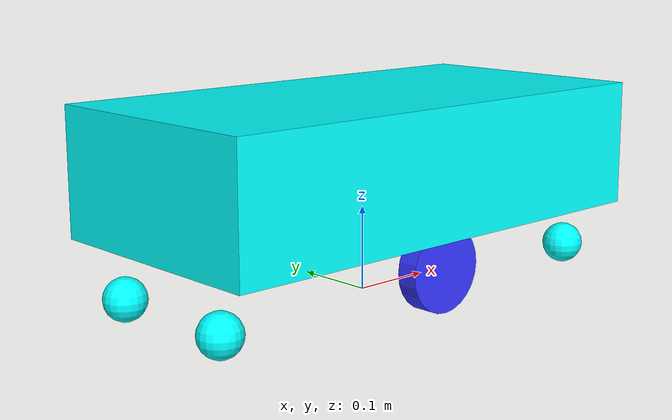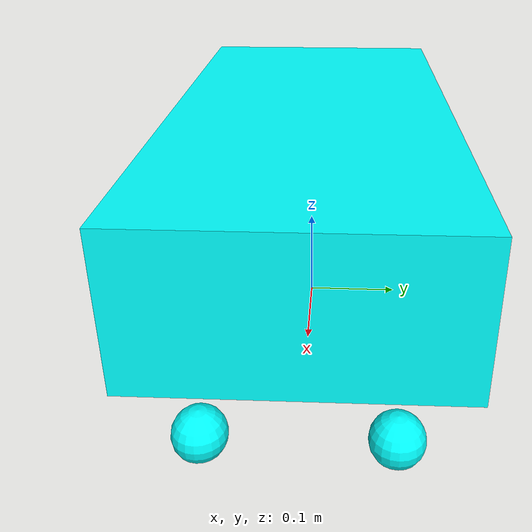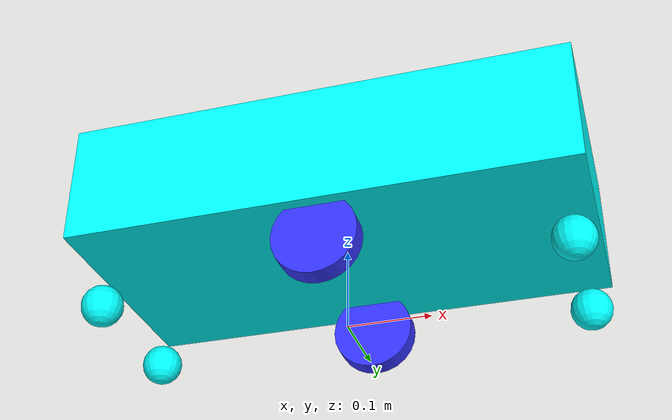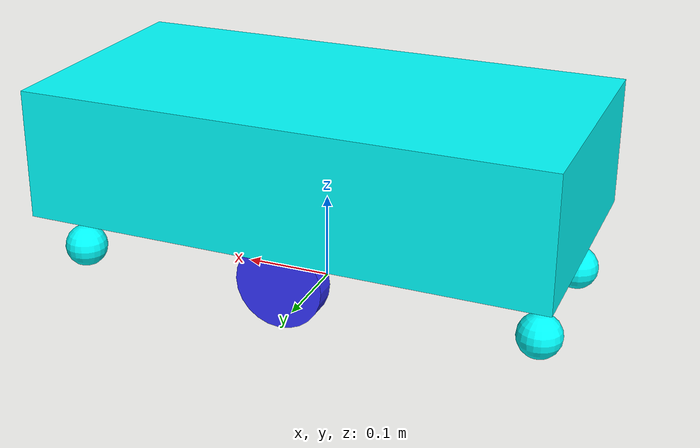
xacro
<?xml version="1.0"?>
<robot xmlns:xacro="http://www.ros.org/wiki/xacro" >

    <xacro:include filename="inertial_macros.xacro"/>

    <xacro:property name="chassis_length" value="0.60"/>
    <xacro:property name="chassis_width" value="0.30"/>
    <xacro:property name="chassis_height" value="0.15"/>
    <xacro:property name="base_width" value="0.22"/>
    <xacro:property name="chassis_zoff" value="0.08"/>
    <xacro:property name="chassis_mass" value="1.0"/>

    <xacro:property name="wheel_radius" value="0.05"/>
    <xacro:property name="wheel_width" value="0.025"/>
    <xacro:property name="wheel_mass" value="0.05"/>

    <xacro:property name="caster_wheel_radius" value="0.025"/>
    <xacro:property name="caster_wheel_mass" value="0.01"/>
    <xacro:property name="caster_wheel_zoff" value="${caster_wheel_radius}"/>

    <material name="cyan"><color rgba="0 1.0 1.0 1.0"/></material>
    <material name="gray"><color rgba="0.5 0.5 0.5 1.0"/></material>
    <material name="white"><color rgba="1 1 1 1"/></material>
    <material name="orange"><color rgba="1 0.3 0.1 1"/></material>
    <material name="blue"><color rgba="0.2 0.2 1 1"/></material>
    <material name="black"><color rgba="0 0 0 1"/></material>
    <material name="red"><color rgba="1 0 0 1"/></material>

    <!-- BASE LINK -->

    <link name="base_link"></link>

    <!-- BASE_FOOTPRINT LINK -->

    <joint name="base_footprint_joint" type="fixed">
        <parent link="base_link"/>
        <child link="base_footprint"/>
        <origin xyz="0 0 0" rpy="0 0 0"/>
    </joint>

    <link name="base_footprint"></link>

    <!-- CHASSIS LINK -->

    <joint name="chassis_joint" type="fixed">
        <parent link="base_link"/>
        <child link="chassis"/>
        <origin xyz="0 0 ${chassis_zoff}"/>
    </joint>

    <link name="chassis">
        <visual>
            <origin xyz="0 0 ${chassis_zoff}"/>
            <geometry>
                <box size="${chassis_length} ${chassis_width} ${chassis_height}"/>
            </geometry>
            <material name="cyan"/>
        </visual>
        <collision>
            <origin xyz="0 0 ${chassis_zoff}"/>
            <geometry>
                <box size="${chassis_length} ${chassis_width} ${chassis_height}"/>
            </geometry>
        </collision>
        <xacro:inertial_box mass="0.5" x="${chassis_length}" y="${chassis_width}" z="${chassis_height}">
            <origin xyz="0 0 ${chassis_zoff}" rpy="0 0 0"/>
        </xacro:inertial_box>
    </link>

    <gazebo reference="chassis">
        <material>Gazebo/Gray</material>
    </gazebo>

    <!-- LEFT WHEEL LINK -->

    <joint name="left_wheel_joint" type="continuous">
        <parent link="base_link"/>
        <child link="left_wheel"/>
        <origin xyz="0 ${(base_width + wheel_width)/2} ${wheel_radius}" rpy="-${pi/2} 0 0" />
        <axis xyz="0 0 1"/>
    </joint>

    <link name="left_wheel">
        <visual>
            <geometry>
                <cylinder radius="${wheel_radius}" length="${wheel_width}"/>
            </geometry>
            <material name="blue"/>
        </visual>
        <collision>
            <geometry>
                <sphere radius="${wheel_radius}"/>
            </geometry>
        </collision>
        <xacro:inertial_cylinder mass="${wheel_mass}" length="${wheel_width}" radius="${wheel_radius}">
            <origin xyz="0 0 0" rpy="0 0 0"/>
        </xacro:inertial_cylinder>
    </link>

    <gazebo reference="left_wheel">
        <material>Gazebo/Blue</material>
    </gazebo>

    <!-- RIGHT WHEEL LINK -->

    <joint name="right_wheel_joint" type="continuous">
        <parent link="base_link"/>
        <child link="right_wheel"/>
        <origin xyz="0 ${-(base_width + wheel_width)/2} ${wheel_radius}" rpy="${pi/2} 0 0" />
        <axis xyz="0 0 -1"/>
    </joint>

    <link name="right_wheel">
        <visual>
            <geometry>
                <cylinder radius="${wheel_radius}" length="${wheel_width}"/>
            </geometry>
            <material name="blue"/>
        </visual>
        <collision>
            <geometry>
                <sphere radius="${wheel_radius}"/>
            </geometry>
        </collision>
        <xacro:inertial_cylinder mass="${wheel_mass}" length="${wheel_width}" radius="${wheel_radius}">
            <origin xyz="0 0 0" rpy="0 0 0"/>
        </xacro:inertial_cylinder>
    </link>

    <gazebo reference="right_wheel">
        <material>Gazebo/Blue</material>
    </gazebo>

    <!-- CASTER WHEEL LINKS -->
    <xacro:macro name="caster_wheel" params="prefix x_reflect y_reflect">
        <link name="${prefix}_link">
            <visual>
                <geometry>
                    <sphere radius="${caster_wheel_radius}"/>
                </geometry>
                <material name="cyan"/>
            </visual>
            <collision>
                <origin xyz="0 0 0" rpy="0 0 0"/>
                <geometry>
                    <sphere radius="${caster_wheel_radius}"/>
                </geometry>
            </collision>
            <xacro:inertial_sphere mass="${caster_wheel_mass}" radius="${caster_wheel_radius}">
                <origin xyz="0 0 0" rpy="0 0 0"/>
            </xacro:inertial_sphere>
        </link>

        <joint name="${prefix}_joint" type="fixed">
            <parent link="base_link"/>
            <child link="${prefix}_link"/>
            <origin xyz="${x_reflect*(chassis_length/2-caster_wheel_radius)} ${y_reflect*(base_width/2-caster_wheel_radius)} ${caster_wheel_zoff}" rpy="0 0 0"/>
        </joint>

        <gazebo reference="${prefix}_link">
            <material>Gazebo/Blue</material>
            <mu1 value="0.001"/>
            <mu2 value="0.001"/>
        </gazebo>
    </xacro:macro>

    <xacro:caster_wheel prefix="front_left_caster" x_reflect="1" y_reflect="1"/>
    <xacro:caster_wheel prefix="front_right_caster" x_reflect="1" y_reflect="-1"/>
    <xacro:caster_wheel prefix="rear_left_caster" x_reflect="-1" y_reflect="1"/>
    <xacro:caster_wheel prefix="rear_right_caster" x_reflect="-1" y_reflect="-1"/>

</robot>
